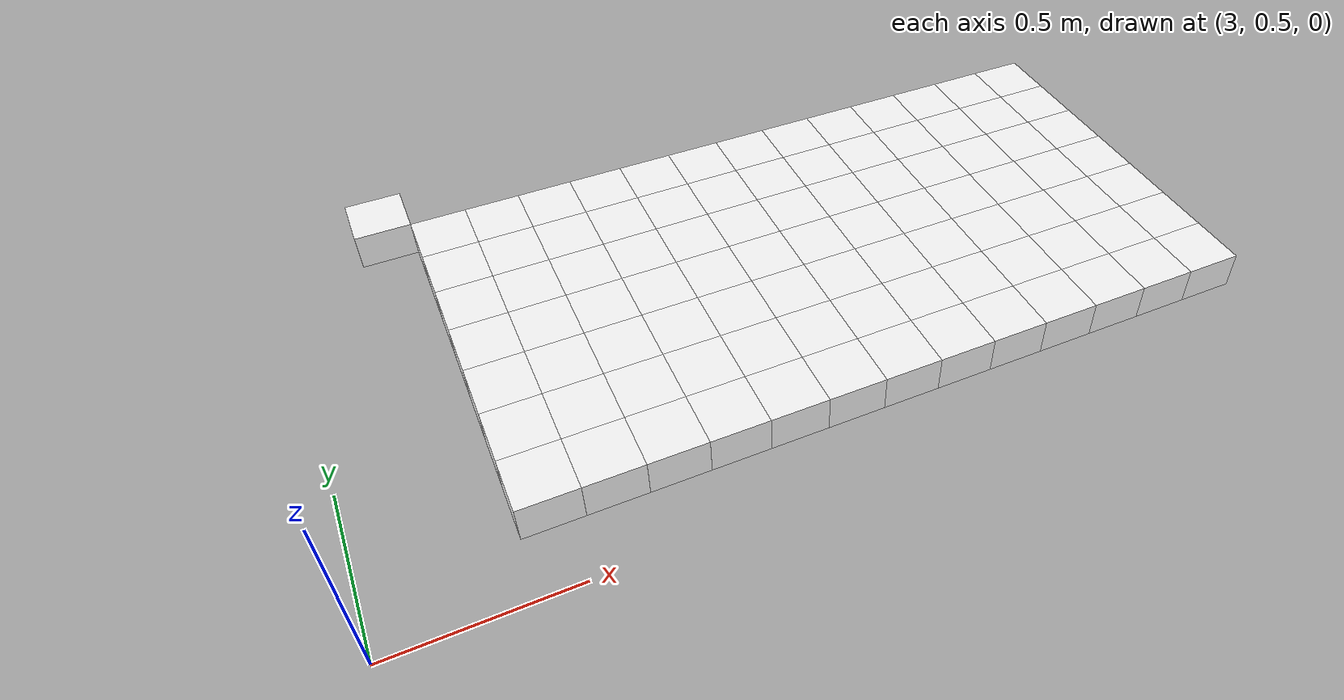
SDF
<sdf version="1.7">
 <world name="default">
  <include><uri>model://sun</uri></include>
  <model name="static_environment">
   <static>true</static>
   <link name="region_607">
    <pose>3.450000000000003 0.6 0.26 0.0 0.0 0.0</pose>
    <collision name="region_607_collision">
     <geometry><box><size>0.15 0.15 0.1</size></box></geometry>
     <surface><friction><ode><mu>1.0</mu><mu2>1.0</mu2></ode></friction></surface>
    </collision>
    <visual name="region_607_visual">
     <geometry><box><size>0.15 0.15 0.1</size></box></geometry>
     <material><ambient>1.0 1.0 1.0 1.0</ambient><diffuse>1.0 1.0 1.0 1.0</diffuse></material>
    </visual>
   </link>
   <link name="region_608">
    <pose>3.600000000000003 0.6 0.26 0.0 0.0 0.0</pose>
    <collision name="region_608_collision">
     <geometry><box><size>0.15 0.15 0.1</size></box></geometry>
     <surface><friction><ode><mu>1.0</mu><mu2>1.0</mu2></ode></friction></surface>
    </collision>
    <visual name="region_608_visual">
     <geometry><box><size>0.15 0.15 0.1</size></box></geometry>
     <material><ambient>1.0 1.0 1.0 1.0</ambient><diffuse>1.0 1.0 1.0 1.0</diffuse></material>
    </visual>
   </link>
   <link name="region_609">
    <pose>3.7500000000000036 0.6 0.26 0.0 0.0 0.0</pose>
    <collision name="region_609_collision">
     <geometry><box><size>0.15 0.15 0.1</size></box></geometry>
     <surface><friction><ode><mu>1.0</mu><mu2>1.0</mu2></ode></friction></surface>
    </collision>
    <visual name="region_609_visual">
     <geometry><box><size>0.15 0.15 0.1</size></box></geometry>
     <material><ambient>1.0 1.0 1.0 1.0</ambient><diffuse>1.0 1.0 1.0 1.0</diffuse></material>
    </visual>
   </link>
   <link name="region_610">
    <pose>3.900000000000004 0.6 0.26 0.0 0.0 0.0</pose>
    <collision name="region_610_collision">
     <geometry><box><size>0.15 0.15 0.1</size></box></geometry>
     <surface><friction><ode><mu>1.0</mu><mu2>1.0</mu2></ode></friction></surface>
    </collision>
    <visual name="region_610_visual">
     <geometry><box><size>0.15 0.15 0.1</size></box></geometry>
     <material><ambient>1.0 1.0 1.0 1.0</ambient><diffuse>1.0 1.0 1.0 1.0</diffuse></material>
    </visual>
   </link>
   <link name="region_611">
    <pose>4.050000000000004 0.6 0.26 0.0 0.0 0.0</pose>
    <collision name="region_611_collision">
     <geometry><box><size>0.15 0.15 0.1</size></box></geometry>
     <surface><friction><ode><mu>1.0</mu><mu2>1.0</mu2></ode></friction></surface>
    </collision>
    <visual name="region_611_visual">
     <geometry><box><size>0.15 0.15 0.1</size></box></geometry>
     <material><ambient>1.0 1.0 1.0 1.0</ambient><diffuse>1.0 1.0 1.0 1.0</diffuse></material>
    </visual>
   </link>
   <link name="region_612">
    <pose>4.200000000000005 0.6 0.26 0.0 0.0 0.0</pose>
    <collision name="region_612_collision">
     <geometry><box><size>0.15 0.15 0.1</size></box></geometry>
     <surface><friction><ode><mu>1.0</mu><mu2>1.0</mu2></ode></friction></surface>
    </collision>
    <visual name="region_612_visual">
     <geometry><box><size>0.15 0.15 0.1</size></box></geometry>
     <material><ambient>1.0 1.0 1.0 1.0</ambient><diffuse>1.0 1.0 1.0 1.0</diffuse></material>
    </visual>
   </link>
   <link name="region_613">
    <pose>4.350000000000005 0.6 0.26 0.0 0.0 0.0</pose>
    <collision name="region_613_collision">
     <geometry><box><size>0.15 0.15 0.1</size></box></geometry>
     <surface><friction><ode><mu>1.0</mu><mu2>1.0</mu2></ode></friction></surface>
    </collision>
    <visual name="region_613_visual">
     <geometry><box><size>0.15 0.15 0.1</size></box></geometry>
     <material><ambient>1.0 1.0 1.0 1.0</ambient><diffuse>1.0 1.0 1.0 1.0</diffuse></material>
    </visual>
   </link>
   <link name="region_614">
    <pose>4.500000000000005 0.6 0.26 0.0 0.0 0.0</pose>
    <collision name="region_614_collision">
     <geometry><box><size>0.15 0.15 0.1</size></box></geometry>
     <surface><friction><ode><mu>1.0</mu><mu2>1.0</mu2></ode></friction></surface>
    </collision>
    <visual name="region_614_visual">
     <geometry><box><size>0.15 0.15 0.1</size></box></geometry>
     <material><ambient>1.0 1.0 1.0 1.0</ambient><diffuse>1.0 1.0 1.0 1.0</diffuse></material>
    </visual>
   </link>
   <link name="region_615">
    <pose>4.650000000000006 0.6 0.26 0.0 0.0 0.0</pose>
    <collision name="region_615_collision">
     <geometry><box><size>0.15 0.15 0.1</size></box></geometry>
     <surface><friction><ode><mu>1.0</mu><mu2>1.0</mu2></ode></friction></surface>
    </collision>
    <visual name="region_615_visual">
     <geometry><box><size>0.15 0.15 0.1</size></box></geometry>
     <material><ambient>1.0 1.0 1.0 1.0</ambient><diffuse>1.0 1.0 1.0 1.0</diffuse></material>
    </visual>
   </link>
   <link name="region_616">
    <pose>4.800000000000006 0.6 0.26 0.0 0.0 0.0</pose>
    <collision name="region_616_collision">
     <geometry><box><size>0.15 0.15 0.1</size></box></geometry>
     <surface><friction><ode><mu>1.0</mu><mu2>1.0</mu2></ode></friction></surface>
    </collision>
    <visual name="region_616_visual">
     <geometry><box><size>0.15 0.15 0.1</size></box></geometry>
     <material><ambient>1.0 1.0 1.0 1.0</ambient><diffuse>1.0 1.0 1.0 1.0</diffuse></material>
    </visual>
   </link>
   <link name="region_617">
    <pose>4.950000000000006 0.6 0.26 0.0 0.0 0.0</pose>
    <collision name="region_617_collision">
     <geometry><box><size>0.15 0.15 0.1</size></box></geometry>
     <surface><friction><ode><mu>1.0</mu><mu2>1.0</mu2></ode></friction></surface>
    </collision>
    <visual name="region_617_visual">
     <geometry><box><size>0.15 0.15 0.1</size></box></geometry>
     <material><ambient>1.0 1.0 1.0 1.0</ambient><diffuse>1.0 1.0 1.0 1.0</diffuse></material>
    </visual>
   </link>
   <link name="region_618">
    <pose>5.100000000000007 0.6 0.26 0.0 0.0 0.0</pose>
    <collision name="region_618_collision">
     <geometry><box><size>0.15 0.15 0.1</size></box></geometry>
     <surface><friction><ode><mu>1.0</mu><mu2>1.0</mu2></ode></friction></surface>
    </collision>
    <visual name="region_618_visual">
     <geometry><box><size>0.15 0.15 0.1</size></box></geometry>
     <material><ambient>1.0 1.0 1.0 1.0</ambient><diffuse>1.0 1.0 1.0 1.0</diffuse></material>
    </visual>
   </link>
   <link name="region_619">
    <pose>5.250000000000007 0.6 0.26 0.0 0.0 0.0</pose>
    <collision name="region_619_collision">
     <geometry><box><size>0.15 0.15 0.1</size></box></geometry>
     <surface><friction><ode><mu>1.0</mu><mu2>1.0</mu2></ode></friction></surface>
    </collision>
    <visual name="region_619_visual">
     <geometry><box><size>0.15 0.15 0.1</size></box></geometry>
     <material><ambient>1.0 1.0 1.0 1.0</ambient><diffuse>1.0 1.0 1.0 1.0</diffuse></material>
    </visual>
   </link>
   <link name="region_627">
    <pose>3.450000000000003 0.75 0.26 0.0 0.0 0.0</pose>
    <collision name="region_627_collision">
     <geometry><box><size>0.15 0.15 0.1</size></box></geometry>
     <surface><friction><ode><mu>1.0</mu><mu2>1.0</mu2></ode></friction></surface>
    </collision>
    <visual name="region_627_visual">
     <geometry><box><size>0.15 0.15 0.1</size></box></geometry>
     <material><ambient>1.0 1.0 1.0 1.0</ambient><diffuse>1.0 1.0 1.0 1.0</diffuse></material>
    </visual>
   </link>
   <link name="region_628">
    <pose>3.600000000000003 0.75 0.26 0.0 0.0 0.0</pose>
    <collision name="region_628_collision">
     <geometry><box><size>0.15 0.15 0.1</size></box></geometry>
     <surface><friction><ode><mu>1.0</mu><mu2>1.0</mu2></ode></friction></surface>
    </collision>
    <visual name="region_628_visual">
     <geometry><box><size>0.15 0.15 0.1</size></box></geometry>
     <material><ambient>1.0 1.0 1.0 1.0</ambient><diffuse>1.0 1.0 1.0 1.0</diffuse></material>
    </visual>
   </link>
   <link name="region_629">
    <pose>3.7500000000000036 0.75 0.26 0.0 0.0 0.0</pose>
    <collision name="region_629_collision">
     <geometry><box><size>0.15 0.15 0.1</size></box></geometry>
     <surface><friction><ode><mu>1.0</mu><mu2>1.0</mu2></ode></friction></surface>
    </collision>
    <visual name="region_629_visual">
     <geometry><box><size>0.15 0.15 0.1</size></box></geometry>
     <material><ambient>1.0 1.0 1.0 1.0</ambient><diffuse>1.0 1.0 1.0 1.0</diffuse></material>
    </visual>
   </link>
   <link name="region_630">
    <pose>3.900000000000004 0.75 0.26 0.0 0.0 0.0</pose>
    <collision name="region_630_collision">
     <geometry><box><size>0.15 0.15 0.1</size></box></geometry>
     <surface><friction><ode><mu>1.0</mu><mu2>1.0</mu2></ode></friction></surface>
    </collision>
    <visual name="region_630_visual">
     <geometry><box><size>0.15 0.15 0.1</size></box></geometry>
     <material><ambient>1.0 1.0 1.0 1.0</ambient><diffuse>1.0 1.0 1.0 1.0</diffuse></material>
    </visual>
   </link>
   <link name="region_631">
    <pose>4.050000000000004 0.75 0.26 0.0 0.0 0.0</pose>
    <collision name="region_631_collision">
     <geometry><box><size>0.15 0.15 0.1</size></box></geometry>
     <surface><friction><ode><mu>1.0</mu><mu2>1.0</mu2></ode></friction></surface>
    </collision>
    <visual name="region_631_visual">
     <geometry><box><size>0.15 0.15 0.1</size></box></geometry>
     <material><ambient>1.0 1.0 1.0 1.0</ambient><diffuse>1.0 1.0 1.0 1.0</diffuse></material>
    </visual>
   </link>
   <link name="region_632">
    <pose>4.200000000000005 0.75 0.26 0.0 0.0 0.0</pose>
    <collision name="region_632_collision">
     <geometry><box><size>0.15 0.15 0.1</size></box></geometry>
     <surface><friction><ode><mu>1.0</mu><mu2>1.0</mu2></ode></friction></surface>
    </collision>
    <visual name="region_632_visual">
     <geometry><box><size>0.15 0.15 0.1</size></box></geometry>
     <material><ambient>1.0 1.0 1.0 1.0</ambient><diffuse>1.0 1.0 1.0 1.0</diffuse></material>
    </visual>
   </link>
   <link name="region_633">
    <pose>4.350000000000005 0.75 0.26 0.0 0.0 0.0</pose>
    <collision name="region_633_collision">
     <geometry><box><size>0.15 0.15 0.1</size></box></geometry>
     <surface><friction><ode><mu>1.0</mu><mu2>1.0</mu2></ode></friction></surface>
    </collision>
    <visual name="region_633_visual">
     <geometry><box><size>0.15 0.15 0.1</size></box></geometry>
     <material><ambient>1.0 1.0 1.0 1.0</ambient><diffuse>1.0 1.0 1.0 1.0</diffuse></material>
    </visual>
   </link>
   <link name="region_634">
    <pose>4.500000000000005 0.75 0.26 0.0 0.0 0.0</pose>
    <collision name="region_634_collision">
     <geometry><box><size>0.15 0.15 0.1</size></box></geometry>
     <surface><friction><ode><mu>1.0</mu><mu2>1.0</mu2></ode></friction></surface>
    </collision>
    <visual name="region_634_visual">
     <geometry><box><size>0.15 0.15 0.1</size></box></geometry>
     <material><ambient>1.0 1.0 1.0 1.0</ambient><diffuse>1.0 1.0 1.0 1.0</diffuse></material>
    </visual>
   </link>
   <link name="region_635">
    <pose>4.650000000000006 0.75 0.26 0.0 0.0 0.0</pose>
    <collision name="region_635_collision">
     <geometry><box><size>0.15 0.15 0.1</size></box></geometry>
     <surface><friction><ode><mu>1.0</mu><mu2>1.0</mu2></ode></friction></surface>
    </collision>
    <visual name="region_635_visual">
     <geometry><box><size>0.15 0.15 0.1</size></box></geometry>
     <material><ambient>1.0 1.0 1.0 1.0</ambient><diffuse>1.0 1.0 1.0 1.0</diffuse></material>
    </visual>
   </link>
   <link name="region_636">
    <pose>4.800000000000006 0.75 0.26 0.0 0.0 0.0</pose>
    <collision name="region_636_collision">
     <geometry><box><size>0.15 0.15 0.1</size></box></geometry>
     <surface><friction><ode><mu>1.0</mu><mu2>1.0</mu2></ode></friction></surface>
    </collision>
    <visual name="region_636_visual">
     <geometry><box><size>0.15 0.15 0.1</size></box></geometry>
     <material><ambient>1.0 1.0 1.0 1.0</ambient><diffuse>1.0 1.0 1.0 1.0</diffuse></material>
    </visual>
   </link>
   <link name="region_637">
    <pose>4.950000000000006 0.75 0.26 0.0 0.0 0.0</pose>
    <collision name="region_637_collision">
     <geometry><box><size>0.15 0.15 0.1</size></box></geometry>
     <surface><friction><ode><mu>1.0</mu><mu2>1.0</mu2></ode></friction></surface>
    </collision>
    <visual name="region_637_visual">
     <geometry><box><size>0.15 0.15 0.1</size></box></geometry>
     <material><ambient>1.0 1.0 1.0 1.0</ambient><diffuse>1.0 1.0 1.0 1.0</diffuse></material>
    </visual>
   </link>
   <link name="region_638">
    <pose>5.100000000000007 0.75 0.26 0.0 0.0 0.0</pose>
    <collision name="region_638_collision">
     <geometry><box><size>0.15 0.15 0.1</size></box></geometry>
     <surface><friction><ode><mu>1.0</mu><mu2>1.0</mu2></ode></friction></surface>
    </collision>
    <visual name="region_638_visual">
     <geometry><box><size>0.15 0.15 0.1</size></box></geometry>
     <material><ambient>1.0 1.0 1.0 1.0</ambient><diffuse>1.0 1.0 1.0 1.0</diffuse></material>
    </visual>
   </link>
   <link name="region_639">
    <pose>5.250000000000007 0.75 0.26 0.0 0.0 0.0</pose>
    <collision name="region_639_collision">
     <geometry><box><size>0.15 0.15 0.1</size></box></geometry>
     <surface><friction><ode><mu>1.0</mu><mu2>1.0</mu2></ode></friction></surface>
    </collision>
    <visual name="region_639_visual">
     <geometry><box><size>0.15 0.15 0.1</size></box></geometry>
     <material><ambient>1.0 1.0 1.0 1.0</ambient><diffuse>1.0 1.0 1.0 1.0</diffuse></material>
    </visual>
   </link>
   <link name="region_647">
    <pose>3.450000000000003 0.8999999999999999 0.26 0.0 0.0 0.0</pose>
    <collision name="region_647_collision">
     <geometry><box><size>0.15 0.15 0.1</size></box></geometry>
     <surface><friction><ode><mu>1.0</mu><mu2>1.0</mu2></ode></friction></surface>
    </collision>
    <visual name="region_647_visual">
     <geometry><box><size>0.15 0.15 0.1</size></box></geometry>
     <material><ambient>1.0 1.0 1.0 1.0</ambient><diffuse>1.0 1.0 1.0 1.0</diffuse></material>
    </visual>
   </link>
   <link name="region_648">
    <pose>3.600000000000003 0.8999999999999999 0.26 0.0 0.0 0.0</pose>
    <collision name="region_648_collision">
     <geometry><box><size>0.15 0.15 0.1</size></box></geometry>
     <surface><friction><ode><mu>1.0</mu><mu2>1.0</mu2></ode></friction></surface>
    </collision>
    <visual name="region_648_visual">
     <geometry><box><size>0.15 0.15 0.1</size></box></geometry>
     <material><ambient>1.0 1.0 1.0 1.0</ambient><diffuse>1.0 1.0 1.0 1.0</diffuse></material>
    </visual>
   </link>
   <link name="region_649">
    <pose>3.7500000000000036 0.8999999999999999 0.26 0.0 0.0 0.0</pose>
    <collision name="region_649_collision">
     <geometry><box><size>0.15 0.15 0.1</size></box></geometry>
     <surface><friction><ode><mu>1.0</mu><mu2>1.0</mu2></ode></friction></surface>
    </collision>
    <visual name="region_649_visual">
     <geometry><box><size>0.15 0.15 0.1</size></box></geometry>
     <material><ambient>1.0 1.0 1.0 1.0</ambient><diffuse>1.0 1.0 1.0 1.0</diffuse></material>
    </visual>
   </link>
   <link name="region_650">
    <pose>3.900000000000004 0.8999999999999999 0.26 0.0 0.0 0.0</pose>
    <collision name="region_650_collision">
     <geometry><box><size>0.15 0.15 0.1</size></box></geometry>
     <surface><friction><ode><mu>1.0</mu><mu2>1.0</mu2></ode></friction></surface>
    </collision>
    <visual name="region_650_visual">
     <geometry><box><size>0.15 0.15 0.1</size></box></geometry>
     <material><ambient>1.0 1.0 1.0 1.0</ambient><diffuse>1.0 1.0 1.0 1.0</diffuse></material>
    </visual>
   </link>
   <link name="region_651">
    <pose>4.050000000000004 0.8999999999999999 0.26 0.0 0.0 0.0</pose>
    <collision name="region_651_collision">
     <geometry><box><size>0.15 0.15 0.1</size></box></geometry>
     <surface><friction><ode><mu>1.0</mu><mu2>1.0</mu2></ode></friction></surface>
    </collision>
    <visual name="region_651_visual">
     <geometry><box><size>0.15 0.15 0.1</size></box></geometry>
     <material><ambient>1.0 1.0 1.0 1.0</ambient><diffuse>1.0 1.0 1.0 1.0</diffuse></material>
    </visual>
   </link>
   <link name="region_652">
    <pose>4.200000000000005 0.8999999999999999 0.26 0.0 0.0 0.0</pose>
    <collision name="region_652_collision">
     <geometry><box><size>0.15 0.15 0.1</size></box></geometry>
     <surface><friction><ode><mu>1.0</mu><mu2>1.0</mu2></ode></friction></surface>
    </collision>
    <visual name="region_652_visual">
     <geometry><box><size>0.15 0.15 0.1</size></box></geometry>
     <material><ambient>1.0 1.0 1.0 1.0</ambient><diffuse>1.0 1.0 1.0 1.0</diffuse></material>
    </visual>
   </link>
   <link name="region_653">
    <pose>4.350000000000005 0.8999999999999999 0.26 0.0 0.0 0.0</pose>
    <collision name="region_653_collision">
     <geometry><box><size>0.15 0.15 0.1</size></box></geometry>
     <surface><friction><ode><mu>1.0</mu><mu2>1.0</mu2></ode></friction></surface>
    </collision>
    <visual name="region_653_visual">
     <geometry><box><size>0.15 0.15 0.1</size></box></geometry>
     <material><ambient>1.0 1.0 1.0 1.0</ambient><diffuse>1.0 1.0 1.0 1.0</diffuse></material>
    </visual>
   </link>
   <link name="region_654">
    <pose>4.500000000000005 0.8999999999999999 0.26 0.0 0.0 0.0</pose>
    <collision name="region_654_collision">
     <geometry><box><size>0.15 0.15 0.1</size></box></geometry>
     <surface><friction><ode><mu>1.0</mu><mu2>1.0</mu2></ode></friction></surface>
    </collision>
    <visual name="region_654_visual">
     <geometry><box><size>0.15 0.15 0.1</size></box></geometry>
     <material><ambient>1.0 1.0 1.0 1.0</ambient><diffuse>1.0 1.0 1.0 1.0</diffuse></material>
    </visual>
   </link>
   <link name="region_655">
    <pose>4.650000000000006 0.8999999999999999 0.26 0.0 0.0 0.0</pose>
    <collision name="region_655_collision">
     <geometry><box><size>0.15 0.15 0.1</size></box></geometry>
     <surface><friction><ode><mu>1.0</mu><mu2>1.0</mu2></ode></friction></surface>
    </collision>
    <visual name="region_655_visual">
     <geometry><box><size>0.15 0.15 0.1</size></box></geometry>
     <material><ambient>1.0 1.0 1.0 1.0</ambient><diffuse>1.0 1.0 1.0 1.0</diffuse></material>
    </visual>
   </link>
   <link name="region_656">
    <pose>4.800000000000006 0.8999999999999999 0.26 0.0 0.0 0.0</pose>
    <collision name="region_656_collision">
     <geometry><box><size>0.15 0.15 0.1</size></box></geometry>
     <surface><friction><ode><mu>1.0</mu><mu2>1.0</mu2></ode></friction></surface>
    </collision>
    <visual name="region_656_visual">
     <geometry><box><size>0.15 0.15 0.1</size></box></geometry>
     <material><ambient>1.0 1.0 1.0 1.0</ambient><diffuse>1.0 1.0 1.0 1.0</diffuse></material>
    </visual>
   </link>
   <link name="region_657">
    <pose>4.950000000000006 0.8999999999999999 0.26 0.0 0.0 0.0</pose>
    <collision name="region_657_collision">
     <geometry><box><size>0.15 0.15 0.1</size></box></geometry>
     <surface><friction><ode><mu>1.0</mu><mu2>1.0</mu2></ode></friction></surface>
    </collision>
    <visual name="region_657_visual">
     <geometry><box><size>0.15 0.15 0.1</size></box></geometry>
     <material><ambient>1.0 1.0 1.0 1.0</ambient><diffuse>1.0 1.0 1.0 1.0</diffuse></material>
    </visual>
   </link>
   <link name="region_658">
    <pose>5.100000000000007 0.8999999999999999 0.26 0.0 0.0 0.0</pose>
    <collision name="region_658_collision">
     <geometry><box><size>0.15 0.15 0.1</size></box></geometry>
     <surface><friction><ode><mu>1.0</mu><mu2>1.0</mu2></ode></friction></surface>
    </collision>
    <visual name="region_658_visual">
     <geometry><box><size>0.15 0.15 0.1</size></box></geometry>
     <material><ambient>1.0 1.0 1.0 1.0</ambient><diffuse>1.0 1.0 1.0 1.0</diffuse></material>
    </visual>
   </link>
   <link name="region_659">
    <pose>5.250000000000007 0.8999999999999999 0.26 0.0 0.0 0.0</pose>
    <collision name="region_659_collision">
     <geometry><box><size>0.15 0.15 0.1</size></box></geometry>
     <surface><friction><ode><mu>1.0</mu><mu2>1.0</mu2></ode></friction></surface>
    </collision>
    <visual name="region_659_visual">
     <geometry><box><size>0.15 0.15 0.1</size></box></geometry>
     <material><ambient>1.0 1.0 1.0 1.0</ambient><diffuse>1.0 1.0 1.0 1.0</diffuse></material>
    </visual>
   </link>
   <link name="region_667">
    <pose>3.450000000000003 1.0499999999999998 0.26 0.0 0.0 0.0</pose>
    <collision name="region_667_collision">
     <geometry><box><size>0.15 0.15 0.1</size></box></geometry>
     <surface><friction><ode><mu>1.0</mu><mu2>1.0</mu2></ode></friction></surface>
    </collision>
    <visual name="region_667_visual">
     <geometry><box><size>0.15 0.15 0.1</size></box></geometry>
     <material><ambient>1.0 1.0 1.0 1.0</ambient><diffuse>1.0 1.0 1.0 1.0</diffuse></material>
    </visual>
   </link>
   <link name="region_668">
    <pose>3.600000000000003 1.0499999999999998 0.26 0.0 0.0 0.0</pose>
    <collision name="region_668_collision">
     <geometry><box><size>0.15 0.15 0.1</size></box></geometry>
     <surface><friction><ode><mu>1.0</mu><mu2>1.0</mu2></ode></friction></surface>
    </collision>
    <visual name="region_668_visual">
     <geometry><box><size>0.15 0.15 0.1</size></box></geometry>
     <material><ambient>1.0 1.0 1.0 1.0</ambient><diffuse>1.0 1.0 1.0 1.0</diffuse></material>
    </visual>
   </link>
   <link name="region_669">
    <pose>3.7500000000000036 1.0499999999999998 0.26 0.0 0.0 0.0</pose>
    <collision name="region_669_collision">
     <geometry><box><size>0.15 0.15 0.1</size></box></geometry>
     <surface><friction><ode><mu>1.0</mu><mu2>1.0</mu2></ode></friction></surface>
    </collision>
    <visual name="region_669_visual">
     <geometry><box><size>0.15 0.15 0.1</size></box></geometry>
     <material><ambient>1.0 1.0 1.0 1.0</ambient><diffuse>1.0 1.0 1.0 1.0</diffuse></material>
    </visual>
   </link>
   <link name="region_670">
    <pose>3.900000000000004 1.0499999999999998 0.26 0.0 0.0 0.0</pose>
    <collision name="region_670_collision">
     <geometry><box><size>0.15 0.15 0.1</size></box></geometry>
     <surface><friction><ode><mu>1.0</mu><mu2>1.0</mu2></ode></friction></surface>
    </collision>
    <visual name="region_670_visual">
     <geometry><box><size>0.15 0.15 0.1</size></box></geometry>
     <material><ambient>1.0 1.0 1.0 1.0</ambient><diffuse>1.0 1.0 1.0 1.0</diffuse></material>
    </visual>
   </link>
   <link name="region_671">
    <pose>4.050000000000004 1.0499999999999998 0.26 0.0 0.0 0.0</pose>
    <collision name="region_671_collision">
     <geometry><box><size>0.15 0.15 0.1</size></box></geometry>
     <surface><friction><ode><mu>1.0</mu><mu2>1.0</mu2></ode></friction></surface>
    </collision>
    <visual name="region_671_visual">
     <geometry><box><size>0.15 0.15 0.1</size></box></geometry>
     <material><ambient>1.0 1.0 1.0 1.0</ambient><diffuse>1.0 1.0 1.0 1.0</diffuse></material>
    </visual>
   </link>
   <link name="region_672">
    <pose>4.200000000000005 1.0499999999999998 0.26 0.0 0.0 0.0</pose>
    <collision name="region_672_collision">
     <geometry><box><size>0.15 0.15 0.1</size></box></geometry>
     <surface><friction><ode><mu>1.0</mu><mu2>1.0</mu2></ode></friction></surface>
    </collision>
    <visual name="region_672_visual">
     <geometry><box><size>0.15 0.15 0.1</size></box></geometry>
     <material><ambient>1.0 1.0 1.0 1.0</ambient><diffuse>1.0 1.0 1.0 1.0</diffuse></material>
    </visual>
   </link>
   <link name="region_673">
    <pose>4.350000000000005 1.0499999999999998 0.26 0.0 0.0 0.0</pose>
    <collision name="region_673_collision">
     <geometry><box><size>0.15 0.15 0.1</size></box></geometry>
     <surface><friction><ode><mu>1.0</mu><mu2>1.0</mu2></ode></friction></surface>
    </collision>
    <visual name="region_673_visual">
     <geometry><box><size>0.15 0.15 0.1</size></box></geometry>
     <material><ambient>1.0 1.0 1.0 1.0</ambient><diffuse>1.0 1.0 1.0 1.0</diffuse></material>
    </visual>
   </link>
   <link name="region_674">
    <pose>4.500000000000005 1.0499999999999998 0.26 0.0 0.0 0.0</pose>
    <collision name="region_674_collision">
     <geometry><box><size>0.15 0.15 0.1</size></box></geometry>
     <surface><friction><ode><mu>1.0</mu><mu2>1.0</mu2></ode></friction></surface>
    </collision>
    <visual name="region_674_visual">
     <geometry><box><size>0.15 0.15 0.1</size></box></geometry>
     <material><ambient>1.0 1.0 1.0 1.0</ambient><diffuse>1.0 1.0 1.0 1.0</diffuse></material>
    </visual>
   </link>
   <link name="region_675">
    <pose>4.650000000000006 1.0499999999999998 0.26 0.0 0.0 0.0</pose>
    <collision name="region_675_collision">
     <geometry><box><size>0.15 0.15 0.1</size></box></geometry>
     <surface><friction><ode><mu>1.0</mu><mu2>1.0</mu2></ode></friction></surface>
    </collision>
    <visual name="region_675_visual">
     <geometry><box><size>0.15 0.15 0.1</size></box></geometry>
     <material><ambient>1.0 1.0 1.0 1.0</ambient><diffuse>1.0 1.0 1.0 1.0</diffuse></material>
    </visual>
   </link>
   <link name="region_676">
    <pose>4.800000000000006 1.0499999999999998 0.26 0.0 0.0 0.0</pose>
    <collision name="region_676_collision">
     <geometry><box><size>0.15 0.15 0.1</size></box></geometry>
     <surface><friction><ode><mu>1.0</mu><mu2>1.0</mu2></ode></friction></surface>
    </collision>
    <visual name="region_676_visual">
     <geometry><box><size>0.15 0.15 0.1</size></box></geometry>
     <material><ambient>1.0 1.0 1.0 1.0</ambient><diffuse>1.0 1.0 1.0 1.0</diffuse></material>
    </visual>
   </link>
   <link name="region_677">
    <pose>4.950000000000006 1.0499999999999998 0.26 0.0 0.0 0.0</pose>
    <collision name="region_677_collision">
     <geometry><box><size>0.15 0.15 0.1</size></box></geometry>
     <surface><friction><ode><mu>1.0</mu><mu2>1.0</mu2></ode></friction></surface>
    </collision>
    <visual name="region_677_visual">
     <geometry><box><size>0.15 0.15 0.1</size></box></geometry>
     <material><ambient>1.0 1.0 1.0 1.0</ambient><diffuse>1.0 1.0 1.0 1.0</diffuse></material>
    </visual>
   </link>
   <link name="region_678">
    <pose>5.100000000000007 1.0499999999999998 0.26 0.0 0.0 0.0</pose>
    <collision name="region_678_collision">
     <geometry><box><size>0.15 0.15 0.1</size></box></geometry>
     <surface><friction><ode><mu>1.0</mu><mu2>1.0</mu2></ode></friction></surface>
    </collision>
    <visual name="region_678_visual">
     <geometry><box><size>0.15 0.15 0.1</size></box></geometry>
     <material><ambient>1.0 1.0 1.0 1.0</ambient><diffuse>1.0 1.0 1.0 1.0</diffuse></material>
    </visual>
   </link>
   <link name="region_679">
    <pose>5.250000000000007 1.0499999999999998 0.26 0.0 0.0 0.0</pose>
    <collision name="region_679_collision">
     <geometry><box><size>0.15 0.15 0.1</size></box></geometry>
     <surface><friction><ode><mu>1.0</mu><mu2>1.0</mu2></ode></friction></surface>
    </collision>
    <visual name="region_679_visual">
     <geometry><box><size>0.15 0.15 0.1</size></box></geometry>
     <material><ambient>1.0 1.0 1.0 1.0</ambient><diffuse>1.0 1.0 1.0 1.0</diffuse></material>
    </visual>
   </link>
   <link name="region_687">
    <pose>3.450000000000003 1.2 0.26 0.0 0.0 0.0</pose>
    <collision name="region_687_collision">
     <geometry><box><size>0.15 0.15 0.1</size></box></geometry>
     <surface><friction><ode><mu>1.0</mu><mu2>1.0</mu2></ode></friction></surface>
    </collision>
    <visual name="region_687_visual">
     <geometry><box><size>0.15 0.15 0.1</size></box></geometry>
     <material><ambient>1.0 1.0 1.0 1.0</ambient><diffuse>1.0 1.0 1.0 1.0</diffuse></material>
    </visual>
   </link>
   <link name="region_688">
    <pose>3.600000000000003 1.2 0.26 0.0 0.0 0.0</pose>
    <collision name="region_688_collision">
     <geometry><box><size>0.15 0.15 0.1</size></box></geometry>
     <surface><friction><ode><mu>1.0</mu><mu2>1.0</mu2></ode></friction></surface>
    </collision>
    <visual name="region_688_visual">
     <geometry><box><size>0.15 0.15 0.1</size></box></geometry>
     <material><ambient>1.0 1.0 1.0 1.0</ambient><diffuse>1.0 1.0 1.0 1.0</diffuse></material>
    </visual>
   </link>
   <link name="region_689">
    <pose>3.7500000000000036 1.2 0.26 0.0 0.0 0.0</pose>
    <collision name="region_689_collision">
     <geometry><box><size>0.15 0.15 0.1</size></box></geometry>
     <surface><friction><ode><mu>1.0</mu><mu2>1.0</mu2></ode></friction></surface>
    </collision>
    <visual name="region_689_visual">
     <geometry><box><size>0.15 0.15 0.1</size></box></geometry>
     <material><ambient>1.0 1.0 1.0 1.0</ambient><diffuse>1.0 1.0 1.0 1.0</diffuse></material>
    </visual>
   </link>
   <link name="region_690">
    <pose>3.900000000000004 1.2 0.26 0.0 0.0 0.0</pose>
    <collision name="region_690_collision">
     <geometry><box><size>0.15 0.15 0.1</size></box></geometry>
     <surface><friction><ode><mu>1.0</mu><mu2>1.0</mu2></ode></friction></surface>
    </collision>
    <visual name="region_690_visual">
     <geometry><box><size>0.15 0.15 0.1</size></box></geometry>
     <material><ambient>1.0 1.0 1.0 1.0</ambient><diffuse>1.0 1.0 1.0 1.0</diffuse></material>
    </visual>
   </link>
   <link name="region_691">
    <pose>4.050000000000004 1.2 0.26 0.0 0.0 0.0</pose>
    <collision name="region_691_collision">
     <geometry><box><size>0.15 0.15 0.1</size></box></geometry>
     <surface><friction><ode><mu>1.0</mu><mu2>1.0</mu2></ode></friction></surface>
    </collision>
    <visual name="region_691_visual">
     <geometry><box><size>0.15 0.15 0.1</size></box></geometry>
     <material><ambient>1.0 1.0 1.0 1.0</ambient><diffuse>1.0 1.0 1.0 1.0</diffuse></material>
    </visual>
   </link>
   <link name="region_692">
    <pose>4.200000000000005 1.2 0.26 0.0 0.0 0.0</pose>
    <collision name="region_692_collision">
     <geometry><box><size>0.15 0.15 0.1</size></box></geometry>
     <surface><friction><ode><mu>1.0</mu><mu2>1.0</mu2></ode></friction></surface>
    </collision>
    <visual name="region_692_visual">
     <geometry><box><size>0.15 0.15 0.1</size></box></geometry>
     <material><ambient>1.0 1.0 1.0 1.0</ambient><diffuse>1.0 1.0 1.0 1.0</diffuse></material>
    </visual>
   </link>
   <link name="region_693">
    <pose>4.350000000000005 1.2 0.26 0.0 0.0 0.0</pose>
    <collision name="region_693_collision">
     <geometry><box><size>0.15 0.15 0.1</size></box></geometry>
     <surface><friction><ode><mu>1.0</mu><mu2>1.0</mu2></ode></friction></surface>
    </collision>
    <visual name="region_693_visual">
     <geometry><box><size>0.15 0.15 0.1</size></box></geometry>
     <material><ambient>1.0 1.0 1.0 1.0</ambient><diffuse>1.0 1.0 1.0 1.0</diffuse></material>
    </visual>
   </link>
   <link name="region_694">
    <pose>4.500000000000005 1.2 0.26 0.0 0.0 0.0</pose>
    <collision name="region_694_collision">
     <geometry><box><size>0.15 0.15 0.1</size></box></geometry>
     <surface><friction><ode><mu>1.0</mu><mu2>1.0</mu2></ode></friction></surface>
    </collision>
    <visual name="region_694_visual">
     <geometry><box><size>0.15 0.15 0.1</size></box></geometry>
     <material><ambient>1.0 1.0 1.0 1.0</ambient><diffuse>1.0 1.0 1.0 1.0</diffuse></material>
    </visual>
   </link>
   <link name="region_695">
    <pose>4.650000000000006 1.2 0.26 0.0 0.0 0.0</pose>
    <collision name="region_695_collision">
     <geometry><box><size>0.15 0.15 0.1</size></box></geometry>
     <surface><friction><ode><mu>1.0</mu><mu2>1.0</mu2></ode></friction></surface>
    </collision>
    <visual name="region_695_visual">
     <geometry><box><size>0.15 0.15 0.1</size></box></geometry>
     <material><ambient>1.0 1.0 1.0 1.0</ambient><diffuse>1.0 1.0 1.0 1.0</diffuse></material>
    </visual>
   </link>
   <link name="region_696">
    <pose>4.800000000000006 1.2 0.26 0.0 0.0 0.0</pose>
    <collision name="region_696_collision">
     <geometry><box><size>0.15 0.15 0.1</size></box></geometry>
     <surface><friction><ode><mu>1.0</mu><mu2>1.0</mu2></ode></friction></surface>
    </collision>
    <visual name="region_696_visual">
     <geometry><box><size>0.15 0.15 0.1</size></box></geometry>
     <material><ambient>1.0 1.0 1.0 1.0</ambient><diffuse>1.0 1.0 1.0 1.0</diffuse></material>
    </visual>
   </link>
   <link name="region_697">
    <pose>4.950000000000006 1.2 0.26 0.0 0.0 0.0</pose>
    <collision name="region_697_collision">
     <geometry><box><size>0.15 0.15 0.1</size></box></geometry>
     <surface><friction><ode><mu>1.0</mu><mu2>1.0</mu2></ode></friction></surface>
    </collision>
    <visual name="region_697_visual">
     <geometry><box><size>0.15 0.15 0.1</size></box></geometry>
     <material><ambient>1.0 1.0 1.0 1.0</ambient><diffuse>1.0 1.0 1.0 1.0</diffuse></material>
    </visual>
   </link>
   <link name="region_698">
    <pose>5.100000000000007 1.2 0.26 0.0 0.0 0.0</pose>
    <collision name="region_698_collision">
     <geometry><box><size>0.15 0.15 0.1</size></box></geometry>
     <surface><friction><ode><mu>1.0</mu><mu2>1.0</mu2></ode></friction></surface>
    </collision>
    <visual name="region_698_visual">
     <geometry><box><size>0.15 0.15 0.1</size></box></geometry>
     <material><ambient>1.0 1.0 1.0 1.0</ambient><diffuse>1.0 1.0 1.0 1.0</diffuse></material>
    </visual>
   </link>
   <link name="region_699">
    <pose>5.250000000000007 1.2 0.26 0.0 0.0 0.0</pose>
    <collision name="region_699_collision">
     <geometry><box><size>0.15 0.15 0.1</size></box></geometry>
     <surface><friction><ode><mu>1.0</mu><mu2>1.0</mu2></ode></friction></surface>
    </collision>
    <visual name="region_699_visual">
     <geometry><box><size>0.15 0.15 0.1</size></box></geometry>
     <material><ambient>1.0 1.0 1.0 1.0</ambient><diffuse>1.0 1.0 1.0 1.0</diffuse></material>
    </visual>
   </link>
   <link name="region_707">
    <pose>3.450000000000003 1.35 0.26 0.0 0.0 0.0</pose>
    <collision name="region_707_collision">
     <geometry><box><size>0.15 0.15 0.1</size></box></geometry>
     <surface><friction><ode><mu>1.0</mu><mu2>1.0</mu2></ode></friction></surface>
    </collision>
    <visual name="region_707_visual">
     <geometry><box><size>0.15 0.15 0.1</size></box></geometry>
     <material><ambient>1.0 1.0 1.0 1.0</ambient><diffuse>1.0 1.0 1.0 1.0</diffuse></material>
    </visual>
   </link>
   <link name="region_708">
    <pose>3.600000000000003 1.35 0.26 0.0 0.0 0.0</pose>
    <collision name="region_708_collision">
     <geometry><box><size>0.15 0.15 0.1</size></box></geometry>
     <surface><friction><ode><mu>1.0</mu><mu2>1.0</mu2></ode></friction></surface>
    </collision>
    <visual name="region_708_visual">
     <geometry><box><size>0.15 0.15 0.1</size></box></geometry>
     <material><ambient>1.0 1.0 1.0 1.0</ambient><diffuse>1.0 1.0 1.0 1.0</diffuse></material>
    </visual>
   </link>
   <link name="region_709">
    <pose>3.7500000000000036 1.35 0.26 0.0 0.0 0.0</pose>
    <collision name="region_709_collision">
     <geometry><box><size>0.15 0.15 0.1</size></box></geometry>
     <surface><friction><ode><mu>1.0</mu><mu2>1.0</mu2></ode></friction></surface>
    </collision>
    <visual name="region_709_visual">
     <geometry><box><size>0.15 0.15 0.1</size></box></geometry>
     <material><ambient>1.0 1.0 1.0 1.0</ambient><diffuse>1.0 1.0 1.0 1.0</diffuse></material>
    </visual>
   </link>
   <link name="region_710">
    <pose>3.900000000000004 1.35 0.26 0.0 0.0 0.0</pose>
    <collision name="region_710_collision">
     <geometry><box><size>0.15 0.15 0.1</size></box></geometry>
     <surface><friction><ode><mu>1.0</mu><mu2>1.0</mu2></ode></friction></surface>
    </collision>
    <visual name="region_710_visual">
     <geometry><box><size>0.15 0.15 0.1</size></box></geometry>
     <material><ambient>1.0 1.0 1.0 1.0</ambient><diffuse>1.0 1.0 1.0 1.0</diffuse></material>
    </visual>
   </link>
   <link name="region_711">
    <pose>4.050000000000004 1.35 0.26 0.0 0.0 0.0</pose>
    <collision name="region_711_collision">
     <geometry><box><size>0.15 0.15 0.1</size></box></geometry>
     <surface><friction><ode><mu>1.0</mu><mu2>1.0</mu2></ode></friction></surface>
    </collision>
    <visual name="region_711_visual">
     <geometry><box><size>0.15 0.15 0.1</size></box></geometry>
     <material><ambient>1.0 1.0 1.0 1.0</ambient><diffuse>1.0 1.0 1.0 1.0</diffuse></material>
    </visual>
   </link>
   <link name="region_712">
    <pose>4.200000000000005 1.35 0.26 0.0 0.0 0.0</pose>
    <collision name="region_712_collision">
     <geometry><box><size>0.15 0.15 0.1</size></box></geometry>
     <surface><friction><ode><mu>1.0</mu><mu2>1.0</mu2></ode></friction></surface>
    </collision>
    <visual name="region_712_visual">
     <geometry><box><size>0.15 0.15 0.1</size></box></geometry>
     <material><ambient>1.0 1.0 1.0 1.0</ambient><diffuse>1.0 1.0 1.0 1.0</diffuse></material>
    </visual>
   </link>
   <link name="region_713">
    <pose>4.350000000000005 1.35 0.26 0.0 0.0 0.0</pose>
    <collision name="region_713_collision">
     <geometry><box><size>0.15 0.15 0.1</size></box></geometry>
     <surface><friction><ode><mu>1.0</mu><mu2>1.0</mu2></ode></friction></surface>
    </collision>
    <visual name="region_713_visual">
     <geometry><box><size>0.15 0.15 0.1</size></box></geometry>
     <material><ambient>1.0 1.0 1.0 1.0</ambient><diffuse>1.0 1.0 1.0 1.0</diffuse></material>
    </visual>
   </link>
   <link name="region_714">
    <pose>4.500000000000005 1.35 0.26 0.0 0.0 0.0</pose>
    <collision name="region_714_collision">
     <geometry><box><size>0.15 0.15 0.1</size></box></geometry>
     <surface><friction><ode><mu>1.0</mu><mu2>1.0</mu2></ode></friction></surface>
    </collision>
    <visual name="region_714_visual">
     <geometry><box><size>0.15 0.15 0.1</size></box></geometry>
     <material><ambient>1.0 1.0 1.0 1.0</ambient><diffuse>1.0 1.0 1.0 1.0</diffuse></material>
    </visual>
   </link>
   <link name="region_715">
    <pose>4.650000000000006 1.35 0.26 0.0 0.0 0.0</pose>
    <collision name="region_715_collision">
     <geometry><box><size>0.15 0.15 0.1</size></box></geometry>
     <surface><friction><ode><mu>1.0</mu><mu2>1.0</mu2></ode></friction></surface>
    </collision>
    <visual name="region_715_visual">
     <geometry><box><size>0.15 0.15 0.1</size></box></geometry>
     <material><ambient>1.0 1.0 1.0 1.0</ambient><diffuse>1.0 1.0 1.0 1.0</diffuse></material>
    </visual>
   </link>
   <link name="region_716">
    <pose>4.800000000000006 1.35 0.26 0.0 0.0 0.0</pose>
    <collision name="region_716_collision">
     <geometry><box><size>0.15 0.15 0.1</size></box></geometry>
     <surface><friction><ode><mu>1.0</mu><mu2>1.0</mu2></ode></friction></surface>
    </collision>
    <visual name="region_716_visual">
     <geometry><box><size>0.15 0.15 0.1</size></box></geometry>
     <material><ambient>1.0 1.0 1.0 1.0</ambient><diffuse>1.0 1.0 1.0 1.0</diffuse></material>
    </visual>
   </link>
   <link name="region_717">
    <pose>4.950000000000006 1.35 0.26 0.0 0.0 0.0</pose>
    <collision name="region_717_collision">
     <geometry><box><size>0.15 0.15 0.1</size></box></geometry>
     <surface><friction><ode><mu>1.0</mu><mu2>1.0</mu2></ode></friction></surface>
    </collision>
    <visual name="region_717_visual">
     <geometry><box><size>0.15 0.15 0.1</size></box></geometry>
     <material><ambient>1.0 1.0 1.0 1.0</ambient><diffuse>1.0 1.0 1.0 1.0</diffuse></material>
    </visual>
   </link>
   <link name="region_718">
    <pose>5.100000000000007 1.35 0.26 0.0 0.0 0.0</pose>
    <collision name="region_718_collision">
     <geometry><box><size>0.15 0.15 0.1</size></box></geometry>
     <surface><friction><ode><mu>1.0</mu><mu2>1.0</mu2></ode></friction></surface>
    </collision>
    <visual name="region_718_visual">
     <geometry><box><size>0.15 0.15 0.1</size></box></geometry>
     <material><ambient>1.0 1.0 1.0 1.0</ambient><diffuse>1.0 1.0 1.0 1.0</diffuse></material>
    </visual>
   </link>
   <link name="region_719">
    <pose>5.250000000000007 1.35 0.26 0.0 0.0 0.0</pose>
    <collision name="region_719_collision">
     <geometry><box><size>0.15 0.15 0.1</size></box></geometry>
     <surface><friction><ode><mu>1.0</mu><mu2>1.0</mu2></ode></friction></surface>
    </collision>
    <visual name="region_719_visual">
     <geometry><box><size>0.15 0.15 0.1</size></box></geometry>
     <material><ambient>1.0 1.0 1.0 1.0</ambient><diffuse>1.0 1.0 1.0 1.0</diffuse></material>
    </visual>
   </link>
   <link name="region_727">
    <pose>3.450000000000003 1.5 0.26 0.0 0.0 0.0</pose>
    <collision name="region_727_collision">
     <geometry><box><size>0.15 0.15 0.1</size></box></geometry>
     <surface><friction><ode><mu>1.0</mu><mu2>1.0</mu2></ode></friction></surface>
    </collision>
    <visual name="region_727_visual">
     <geometry><box><size>0.15 0.15 0.1</size></box></geometry>
     <material><ambient>1.0 1.0 1.0 1.0</ambient><diffuse>1.0 1.0 1.0 1.0</diffuse></material>
    </visual>
   </link>
   <link name="region_728">
    <pose>3.600000000000003 1.5 0.26 0.0 0.0 0.0</pose>
    <collision name="region_728_collision">
     <geometry><box><size>0.15 0.15 0.1</size></box></geometry>
     <surface><friction><ode><mu>1.0</mu><mu2>1.0</mu2></ode></friction></surface>
    </collision>
    <visual name="region_728_visual">
     <geometry><box><size>0.15 0.15 0.1</size></box></geometry>
     <material><ambient>1.0 1.0 1.0 1.0</ambient><diffuse>1.0 1.0 1.0 1.0</diffuse></material>
    </visual>
   </link>
   <link name="region_729">
    <pose>3.7500000000000036 1.5 0.26 0.0 0.0 0.0</pose>
    <collision name="region_729_collision">
     <geometry><box><size>0.15 0.15 0.1</size></box></geometry>
     <surface><friction><ode><mu>1.0</mu><mu2>1.0</mu2></ode></friction></surface>
    </collision>
    <visual name="region_729_visual">
     <geometry><box><size>0.15 0.15 0.1</size></box></geometry>
     <material><ambient>1.0 1.0 1.0 1.0</ambient><diffuse>1.0 1.0 1.0 1.0</diffuse></material>
    </visual>
   </link>
   <link name="region_730">
    <pose>3.900000000000004 1.5 0.26 0.0 0.0 0.0</pose>
    <collision name="region_730_collision">
     <geometry><box><size>0.15 0.15 0.1</size></box></geometry>
     <surface><friction><ode><mu>1.0</mu><mu2>1.0</mu2></ode></friction></surface>
    </collision>
    <visual name="region_730_visual">
     <geometry><box><size>0.15 0.15 0.1</size></box></geometry>
     <material><ambient>1.0 1.0 1.0 1.0</ambient><diffuse>1.0 1.0 1.0 1.0</diffuse></material>
    </visual>
   </link>
   <link name="region_731">
    <pose>4.050000000000004 1.5 0.26 0.0 0.0 0.0</pose>
    <collision name="region_731_collision">
     <geometry><box><size>0.15 0.15 0.1</size></box></geometry>
     <surface><friction><ode><mu>1.0</mu><mu2>1.0</mu2></ode></friction></surface>
    </collision>
    <visual name="region_731_visual">
     <geometry><box><size>0.15 0.15 0.1</size></box></geometry>
     <material><ambient>1.0 1.0 1.0 1.0</ambient><diffuse>1.0 1.0 1.0 1.0</diffuse></material>
    </visual>
   </link>
   <link name="region_732">
    <pose>4.200000000000005 1.5 0.26 0.0 0.0 0.0</pose>
    <collision name="region_732_collision">
     <geometry><box><size>0.15 0.15 0.1</size></box></geometry>
     <surface><friction><ode><mu>1.0</mu><mu2>1.0</mu2></ode></friction></surface>
    </collision>
    <visual name="region_732_visual">
     <geometry><box><size>0.15 0.15 0.1</size></box></geometry>
     <material><ambient>1.0 1.0 1.0 1.0</ambient><diffuse>1.0 1.0 1.0 1.0</diffuse></material>
    </visual>
   </link>
   <link name="region_733">
    <pose>4.350000000000005 1.5 0.26 0.0 0.0 0.0</pose>
    <collision name="region_733_collision">
     <geometry><box><size>0.15 0.15 0.1</size></box></geometry>
     <surface><friction><ode><mu>1.0</mu><mu2>1.0</mu2></ode></friction></surface>
    </collision>
    <visual name="region_733_visual">
     <geometry><box><size>0.15 0.15 0.1</size></box></geometry>
     <material><ambient>1.0 1.0 1.0 1.0</ambient><diffuse>1.0 1.0 1.0 1.0</diffuse></material>
    </visual>
   </link>
   <link name="region_734">
    <pose>4.500000000000005 1.5 0.26 0.0 0.0 0.0</pose>
    <collision name="region_734_collision">
     <geometry><box><size>0.15 0.15 0.1</size></box></geometry>
     <surface><friction><ode><mu>1.0</mu><mu2>1.0</mu2></ode></friction></surface>
    </collision>
    <visual name="region_734_visual">
     <geometry><box><size>0.15 0.15 0.1</size></box></geometry>
     <material><ambient>1.0 1.0 1.0 1.0</ambient><diffuse>1.0 1.0 1.0 1.0</diffuse></material>
    </visual>
   </link>
   <link name="region_735">
    <pose>4.650000000000006 1.5 0.26 0.0 0.0 0.0</pose>
    <collision name="region_735_collision">
     <geometry><box><size>0.15 0.15 0.1</size></box></geometry>
     <surface><friction><ode><mu>1.0</mu><mu2>1.0</mu2></ode></friction></surface>
    </collision>
    <visual name="region_735_visual">
     <geometry><box><size>0.15 0.15 0.1</size></box></geometry>
     <material><ambient>1.0 1.0 1.0 1.0</ambient><diffuse>1.0 1.0 1.0 1.0</diffuse></material>
    </visual>
   </link>
   <link name="region_736">
    <pose>4.800000000000006 1.5 0.26 0.0 0.0 0.0</pose>
    <collision name="region_736_collision">
     <geometry><box><size>0.15 0.15 0.1</size></box></geometry>
     <surface><friction><ode><mu>1.0</mu><mu2>1.0</mu2></ode></friction></surface>
    </collision>
    <visual name="region_736_visual">
     <geometry><box><size>0.15 0.15 0.1</size></box></geometry>
     <material><ambient>1.0 1.0 1.0 1.0</ambient><diffuse>1.0 1.0 1.0 1.0</diffuse></material>
    </visual>
   </link>
   <link name="region_737">
    <pose>4.950000000000006 1.5 0.26 0.0 0.0 0.0</pose>
    <collision name="region_737_collision">
     <geometry><box><size>0.15 0.15 0.1</size></box></geometry>
     <surface><friction><ode><mu>1.0</mu><mu2>1.0</mu2></ode></friction></surface>
    </collision>
    <visual name="region_737_visual">
     <geometry><box><size>0.15 0.15 0.1</size></box></geometry>
     <material><ambient>1.0 1.0 1.0 1.0</ambient><diffuse>1.0 1.0 1.0 1.0</diffuse></material>
    </visual>
   </link>
   <link name="region_738">
    <pose>5.100000000000007 1.5 0.26 0.0 0.0 0.0</pose>
    <collision name="region_738_collision">
     <geometry><box><size>0.15 0.15 0.1</size></box></geometry>
     <surface><friction><ode><mu>1.0</mu><mu2>1.0</mu2></ode></friction></surface>
    </collision>
    <visual name="region_738_visual">
     <geometry><box><size>0.15 0.15 0.1</size></box></geometry>
     <material><ambient>1.0 1.0 1.0 1.0</ambient><diffuse>1.0 1.0 1.0 1.0</diffuse></material>
    </visual>
   </link>
   <link name="region_739">
    <pose>5.250000000000007 1.5 0.26 0.0 0.0 0.0</pose>
    <collision name="region_739_collision">
     <geometry><box><size>0.15 0.15 0.1</size></box></geometry>
     <surface><friction><ode><mu>1.0</mu><mu2>1.0</mu2></ode></friction></surface>
    </collision>
    <visual name="region_739_visual">
     <geometry><box><size>0.15 0.15 0.1</size></box></geometry>
     <material><ambient>1.0 1.0 1.0 1.0</ambient><diffuse>1.0 1.0 1.0 1.0</diffuse></material>
    </visual>
   </link>
   <link name="region_746">
    <pose>3.3000000000000025 1.65 0.26 0.0 0.0 0.0</pose>
    <collision name="region_746_collision">
     <geometry><box><size>0.15 0.15 0.1</size></box></geometry>
     <surface><friction><ode><mu>1.0</mu><mu2>1.0</mu2></ode></friction></surface>
    </collision>
    <visual name="region_746_visual">
     <geometry><box><size>0.15 0.15 0.1</size></box></geometry>
     <material><ambient>1.0 1.0 1.0 1.0</ambient><diffuse>1.0 1.0 1.0 1.0</diffuse></material>
    </visual>
   </link>
  </model>
 </world>
</sdf>
